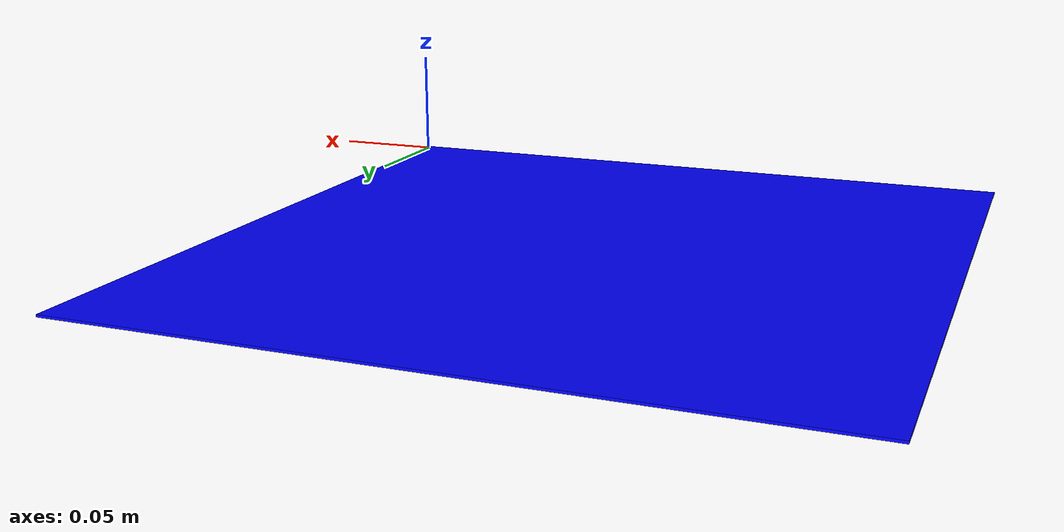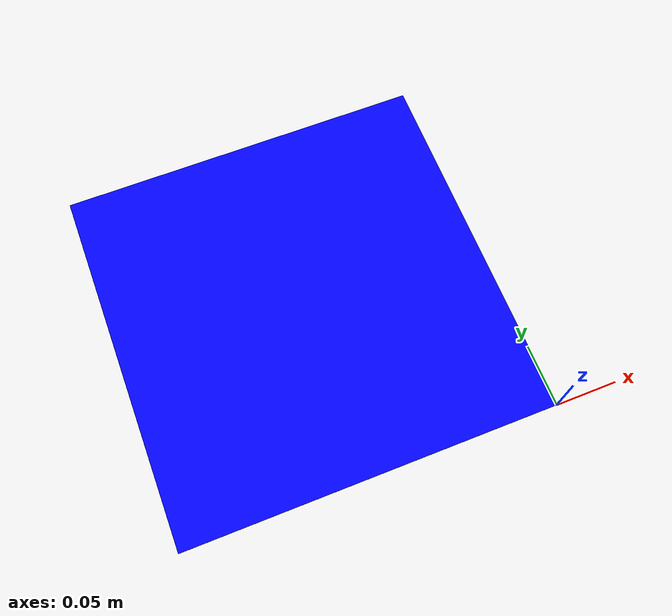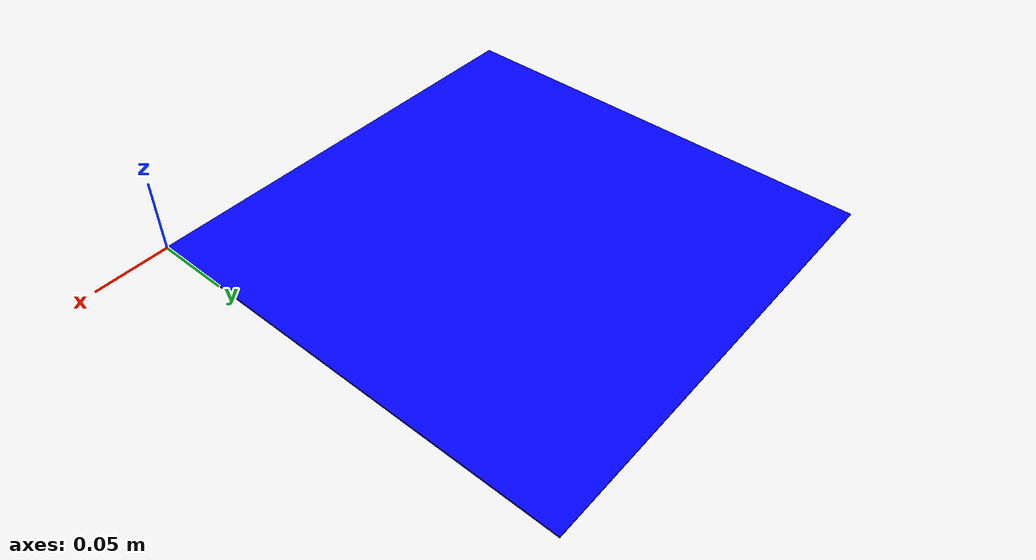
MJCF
<mujoco model="ben_tray_blue">
  <asset>
    <mesh file="meshes/ben_tray_blue.stl" name="ben_tray_blue"/>
    <texture file="../textures/white-plaster.png" name="texplaster"/>
    <material name="plaster" reflectance="0.7" texrepeat="5 5" texture="texplaster" texuniform="true"/>
  </asset>
  <worldbody>
    <body name="ben_tray_blue">
      <body name="collision">
        <geom pos="0 0 0" mesh="ben_tray_blue" type="mesh" density="5000" group="1" rgba="0 0 1 1" material="plaster" condim="6"/>
      </body>
      <body name="visual">
        <geom pos="0 0 0" mesh="ben_tray_blue" type="mesh" conaffinity="0" contype="0" group="0" mass="0.0001"/>
      </body>
      <site rgba="0 0 0 0" size="0.005" pos="0 0 -0.06" name="bottom_site"/>
      <site rgba="0 0 0 0" size="0.005" pos="0 0 0.04" name="top_site"/>
      <site rgba="0 0 0 0" size="0.005" pos="0.025 0.025 0" name="horizontal_radius_site"/>
    </body>
  </worldbody>
</mujoco>
